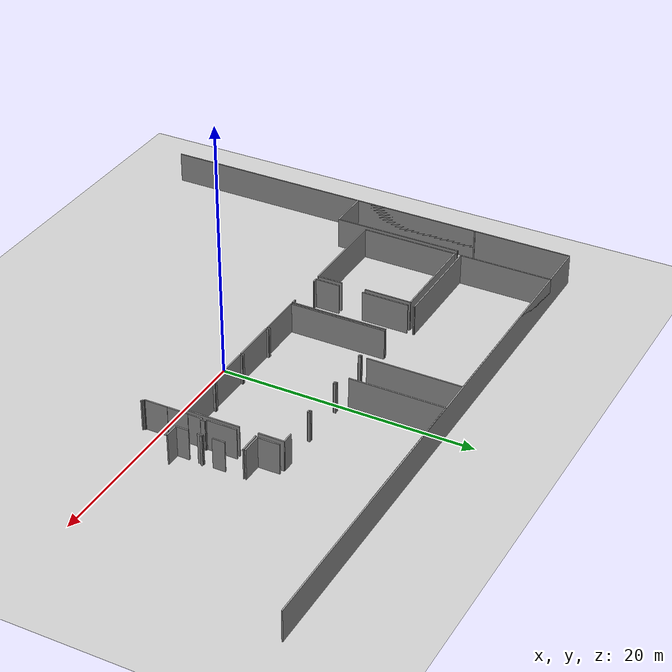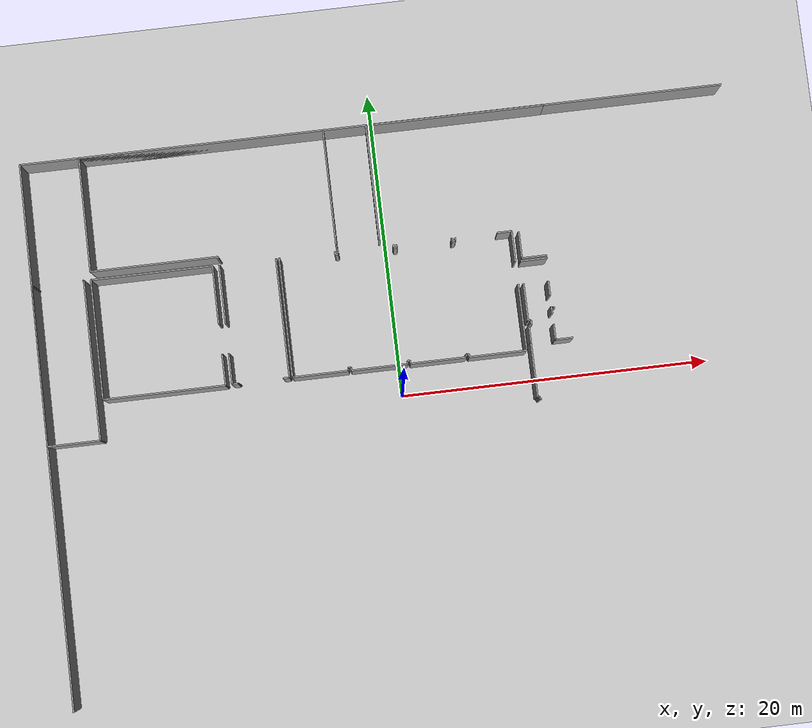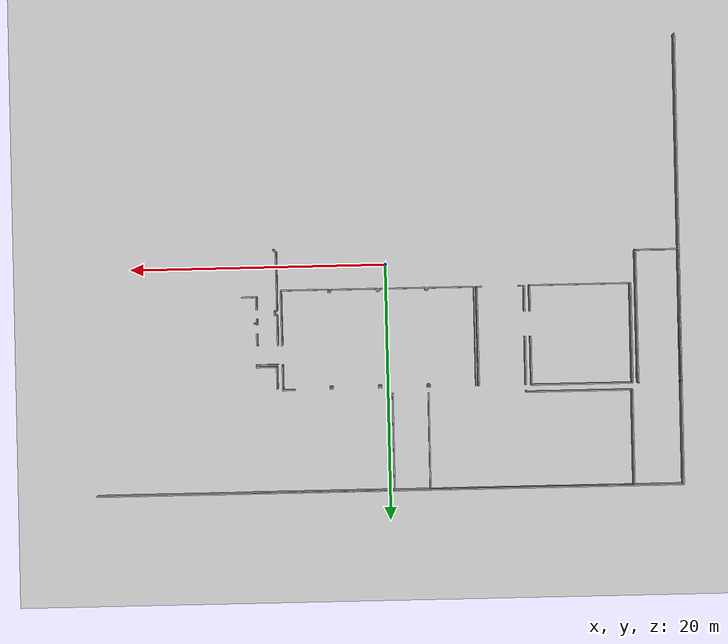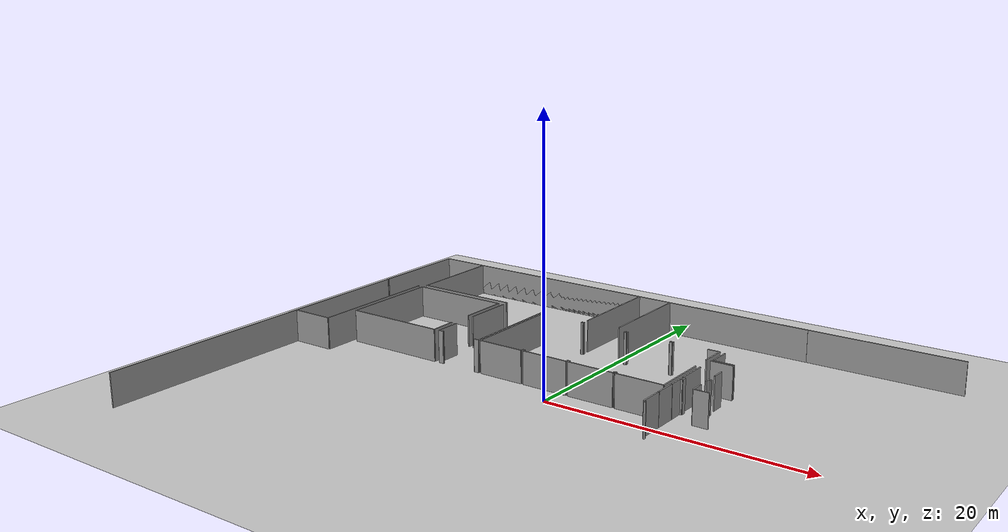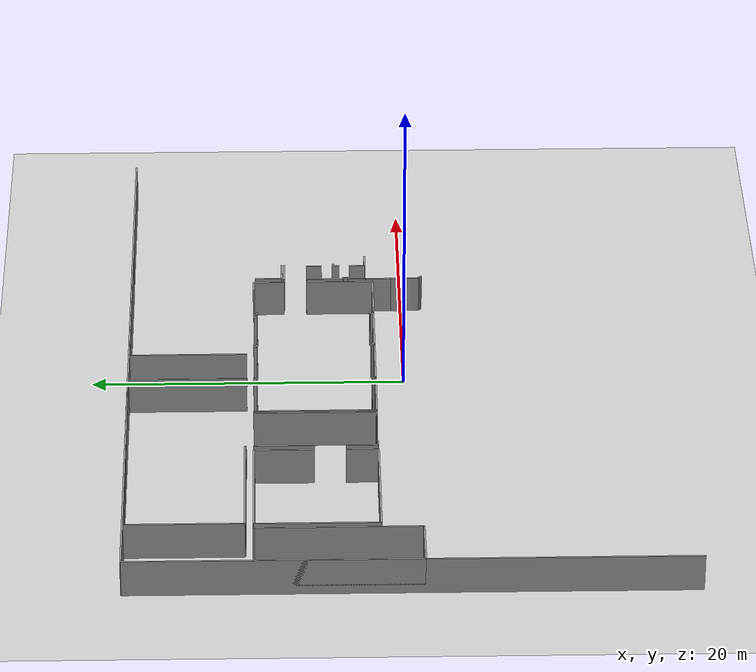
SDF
<sdf version="1.6">
 <world name="default">
  <model name="ground_plane">
   <static>1</static>
   <link name="link">
    <collision name="collision">
     <geometry><plane><normal>0 0 1</normal><size>100 100</size></plane></geometry>
     <surface><friction><ode><mu>100</mu><mu2>50</mu2></ode></friction></surface>
    </collision>
    <visual name="visual">
     <cast_shadows>0</cast_shadows>
     <geometry><plane><normal>0 0 1</normal><size>100 100</size></plane></geometry>
     <material>
      <script><uri>file://media/materials/scripts/gazebo.material</uri><name>Gazebo/Grey</name></script>
     </material>
    </visual>
   </link>
  </model>
  <model name="50009418">
   <static>1</static>
   <link name="Wall_0">
    <collision name="Wall_0_Collision">
     <geometry><box><size>3.38024506571 0.1 2.5</size></box></geometry>
     <pose>1.69012253285 0 1.25 0 0 0</pose>
    </collision>
    <visual name="Wall_0_Visual">
     <pose>1.69012253285 0 1.25 0 0 0</pose>
     <geometry><box><size>3.38024506571 0.1 2.5</size></box></geometry>
     <material>
      <script><uri>file://media/materials/scripts/gazebo.material</uri><name>Gazebo/Grey</name></script>
      <ambient>1 1 1 1</ambient>
     </material>
    </visual>
    <pose>3.38024506571 -18.3310289715 0 0 0 3.14159265359</pose>
   </link>
   <link name="Wall_1">
    <collision name="Wall_1_Collision">
     <geometry><box><size>10.351616013 0.1 2.5</size></box></geometry>
     <pose>5.17580800649 0 1.25 0 0 0</pose>
    </collision>
    <visual name="Wall_1_Visual">
     <pose>5.17580800649 0 1.25 0 0 0</pose>
     <geometry><box><size>10.351616013 0.1 2.5</size></box></geometry>
     <material>
      <script><uri>file://media/materials/scripts/gazebo.material</uri><name>Gazebo/Grey</name></script>
      <ambient>1 1 1 1</ambient>
     </material>
    </visual>
    <pose>0.0 -18.3310289715 0 0 0 1.57079632679</pose>
   </link>
   <link name="Wall_2">
    <collision name="Wall_2_Collision">
     <geometry><box><size>0.0989395707545 0.1 2.5</size></box></geometry>
     <pose>0.0494697853772 0 1.25 0 0 0</pose>
    </collision>
    <visual name="Wall_2_Visual">
     <pose>0.0494697853772 0 1.25 0 0 0</pose>
     <geometry><box><size>0.0989395707545 0.1 2.5</size></box></geometry>
     <material>
      <script><uri>file://media/materials/scripts/gazebo.material</uri><name>Gazebo/Grey</name></script>
      <ambient>1 1 1 1</ambient>
     </material>
    </visual>
    <pose>0.0 -7.97941295855 0 0 0 0.0</pose>
   </link>
   <link name="Wall_3">
    <collision name="Wall_3_Collision">
     <geometry><box><size>0.078771119793 0.1 2.5</size></box></geometry>
     <pose>0.0393855598965 0 1.25 0 0 0</pose>
    </collision>
    <visual name="Wall_3_Visual">
     <pose>0.0393855598965 0 1.25 0 0 0</pose>
     <geometry><box><size>0.078771119793 0.1 2.5</size></box></geometry>
     <material>
      <script><uri>file://media/materials/scripts/gazebo.material</uri><name>Gazebo/Grey</name></script>
      <ambient>1 1 1 1</ambient>
     </material>
    </visual>
    <pose>3.2831447562 -7.97941295855 0 0 0 0.0</pose>
   </link>
   <link name="Wall_4">
    <collision name="Wall_4_Collision">
     <geometry><box><size>10.3516322404 0.1 2.5</size></box></geometry>
     <pose>5.17581612018 0 1.25 0 0 0</pose>
    </collision>
    <visual name="Wall_4_Visual">
     <pose>5.17581612018 0 1.25 0 0 0</pose>
     <geometry><box><size>10.3516322404 0.1 2.5</size></box></geometry>
     <material>
      <script><uri>file://media/materials/scripts/gazebo.material</uri><name>Gazebo/Grey</name></script>
      <ambient>1 1 1 1</ambient>
     </material>
    </visual>
    <pose>3.361915876 -7.97941295855 0 0 0 -1.56902566891</pose>
   </link>
   <link name="Wall_5">
    <collision name="Wall_5_Collision">
     <geometry><box><size>7.87876097214 0.1 2.5</size></box></geometry>
     <pose>3.93938048607 0 1.25 0 0 0</pose>
    </collision>
    <visual name="Wall_5_Visual">
     <pose>3.93938048607 0 1.25 0 0 0</pose>
     <geometry><box><size>7.87876097214 0.1 2.5</size></box></geometry>
     <material>
      <script><uri>file://media/materials/scripts/gazebo.material</uri><name>Gazebo/Grey</name></script>
      <ambient>1 1 1 1</ambient>
     </material>
    </visual>
    <pose>11.6878076006 -15.7501014765 0 0 0 3.14159265359</pose>
   </link>
   <link name="Wall_6">
    <collision name="Wall_6_Collision">
     <geometry><box><size>7.76295093612 0.1 2.5</size></box></geometry>
     <pose>3.88147546806 0 1.25 0 0 0</pose>
    </collision>
    <visual name="Wall_6_Visual">
     <pose>3.88147546806 0 1.25 0 0 0</pose>
     <geometry><box><size>7.76295093612 0.1 2.5</size></box></geometry>
     <material>
      <script><uri>file://media/materials/scripts/gazebo.material</uri><name>Gazebo/Grey</name></script>
      <ambient>1 1 1 1</ambient>
     </material>
    </visual>
    <pose>3.80904662844 -15.7501014765 0 0 0 1.57079632679</pose>
   </link>
   <link name="Wall_7">
    <collision name="Wall_7_Collision">
     <geometry><box><size>7.86055862804 0.1 2.5</size></box></geometry>
     <pose>3.93027931402 0 1.25 0 0 0</pose>
    </collision>
    <visual name="Wall_7_Visual">
     <pose>3.93027931402 0 1.25 0 0 0</pose>
     <geometry><box><size>7.86055862804 0.1 2.5</size></box></geometry>
     <material>
      <script><uri>file://media/materials/scripts/gazebo.material</uri><name>Gazebo/Grey</name></script>
      <ambient>1 1 1 1</ambient>
     </material>
    </visual>
    <pose>3.80904662844 -7.98715054036 0 0 0 0.0</pose>
   </link>
   <link name="Wall_8">
    <collision name="Wall_8_Collision">
     <geometry><box><size>3.78475569537 0.1 2.5</size></box></geometry>
     <pose>1.89237784768 0 1.25 0 0 0</pose>
    </collision>
    <visual name="Wall_8_Visual">
     <pose>1.89237784768 0 1.25 0 0 0</pose>
     <geometry><box><size>3.78475569537 0.1 2.5</size></box></geometry>
     <material>
      <script><uri>file://media/materials/scripts/gazebo.material</uri><name>Gazebo/Grey</name></script>
      <ambient>1 1 1 1</ambient>
     </material>
    </visual>
    <pose>11.6696052565 -7.98715054036 0 0 0 -1.57079632679</pose>
   </link>
   <link name="Wall_9">
    <collision name="Wall_9_Collision">
     <geometry><box><size>2.01857615973 0.1 2.5</size></box></geometry>
     <pose>1.00928807987 0 1.25 0 0 0</pose>
    </collision>
    <visual name="Wall_9_Visual">
     <pose>1.00928807987 0 1.25 0 0 0</pose>
     <geometry><box><size>2.01857615973 0.1 2.5</size></box></geometry>
     <material>
      <script><uri>file://media/materials/scripts/gazebo.material</uri><name>Gazebo/Grey</name></script>
      <ambient>1 1 1 1</ambient>
     </material>
    </visual>
    <pose>11.6696052565 -13.7316073875 0 0 0 -1.56177878702</pose>
   </link>
   <link name="Wall_10">
    <collision name="Wall_10_Collision">
     <geometry><box><size>0.377111979299 0.1 2.5</size></box></geometry>
     <pose>0.188555989649 0 1.25 0 0 0</pose>
    </collision>
    <visual name="Wall_10_Visual">
     <pose>0.188555989649 0 1.25 0 0 0</pose>
     <geometry><box><size>0.377111979299 0.1 2.5</size></box></geometry>
     <material>
      <script><uri>file://media/materials/scripts/gazebo.material</uri><name>Gazebo/Grey</name></script>
      <ambient>1 1 1 1</ambient>
     </material>
    </visual>
    <pose>15.7893601908 -15.7225125577 0 0 0 3.14159265359</pose>
   </link>
   <link name="Wall_11">
    <collision name="Wall_11_Collision">
     <geometry><box><size>0.0501674361967 0.1 2.5</size></box></geometry>
     <pose>0.0250837180983 0 1.25 0 0 0</pose>
    </collision>
    <visual name="Wall_11_Visual">
     <pose>0.0250837180983 0 1.25 0 0 0</pose>
     <geometry><box><size>0.0501674361967 0.1 2.5</size></box></geometry>
     <material>
      <script><uri>file://media/materials/scripts/gazebo.material</uri><name>Gazebo/Grey</name></script>
      <ambient>1 1 1 1</ambient>
     </material>
    </visual>
    <pose>15.4122482115 -15.7225125577 0 0 0 1.57079632679</pose>
   </link>
   <link name="Wall_12">
    <collision name="Wall_12_Collision">
     <geometry><box><size>0.0525775026638 0.1 2.5</size></box></geometry>
     <pose>0.0262887513319 0 1.25 0 0 0</pose>
    </collision>
    <visual name="Wall_12_Visual">
     <pose>0.0262887513319 0 1.25 0 0 0</pose>
     <geometry><box><size>0.0525775026638 0.1 2.5</size></box></geometry>
     <material>
      <script><uri>file://media/materials/scripts/gazebo.material</uri><name>Gazebo/Grey</name></script>
      <ambient>1 1 1 1</ambient>
     </material>
    </visual>
    <pose>12.4979704703 -15.6723451215 0 0 0 -1.57079632679</pose>
   </link>
   <link name="Wall_13">
    <collision name="Wall_13_Collision">
     <geometry><box><size>0.391952914912 0.1 2.5</size></box></geometry>
     <pose>0.195976457456 0 1.25 0 0 0</pose>
    </collision>
    <visual name="Wall_13_Visual">
     <pose>0.195976457456 0 1.25 0 0 0</pose>
     <geometry><box><size>0.391952914912 0.1 2.5</size></box></geometry>
     <material>
      <script><uri>file://media/materials/scripts/gazebo.material</uri><name>Gazebo/Grey</name></script>
      <ambient>1 1 1 1</ambient>
     </material>
    </visual>
    <pose>12.4979704703 -15.7249226242 0 0 0 3.14159265359</pose>
   </link>
   <link name="Wall_14">
    <collision name="Wall_14_Collision">
     <geometry><box><size>1.99306154549 0.1 2.5</size></box></geometry>
     <pose>0.996530772743 0 1.25 0 0 0</pose>
    </collision>
    <visual name="Wall_14_Visual">
     <pose>0.996530772743 0 1.25 0 0 0</pose>
     <geometry><box><size>1.99306154549 0.1 2.5</size></box></geometry>
     <material>
      <script><uri>file://media/materials/scripts/gazebo.material</uri><name>Gazebo/Grey</name></script>
      <ambient>1 1 1 1</ambient>
     </material>
    </visual>
    <pose>12.1060175554 -15.7249226242 0 0 0 1.57079632679</pose>
   </link>
   <link name="Wall_15">
    <collision name="Wall_15_Collision">
     <geometry><box><size>3.80143589223 0.1 2.5</size></box></geometry>
     <pose>1.90071794612 0 1.25 0 0 0</pose>
    </collision>
    <visual name="Wall_15_Visual">
     <pose>1.90071794612 0 1.25 0 0 0</pose>
     <geometry><box><size>3.80143589223 0.1 2.5</size></box></geometry>
     <material>
      <script><uri>file://media/materials/scripts/gazebo.material</uri><name>Gazebo/Grey</name></script>
      <ambient>1 1 1 1</ambient>
     </material>
    </visual>
    <pose>12.1060175554 -11.773745497 0 0 0 1.57079632679</pose>
   </link>
   <link name="Wall_16">
    <collision name="Wall_16_Collision">
     <geometry><box><size>7.75022300862 0.1 2.5</size></box></geometry>
     <pose>3.87511150431 0 1.25 0 0 0</pose>
    </collision>
    <visual name="Wall_16_Visual">
     <pose>3.87511150431 0 1.25 0 0 0</pose>
     <geometry><box><size>7.75022300862 0.1 2.5</size></box></geometry>
     <material>
      <script><uri>file://media/materials/scripts/gazebo.material</uri><name>Gazebo/Grey</name></script>
      <ambient>1 1 1 1</ambient>
     </material>
    </visual>
    <pose>15.7717286519 -7.97230960475 0 0 0 -1.56852135302</pose>
   </link>
   <link name="Wall_17">
    <collision name="Wall_17_Collision">
     <geometry><box><size>3.70439900553 0.1 2.5</size></box></geometry>
     <pose>1.85219950277 0 1.25 0 0 0</pose>
    </collision>
    <visual name="Wall_17_Visual">
     <pose>1.85219950277 0 1.25 0 0 0</pose>
     <geometry><box><size>3.70439900553 0.1 2.5</size></box></geometry>
     <material>
      <script><uri>file://media/materials/scripts/gazebo.material</uri><name>Gazebo/Grey</name></script>
      <ambient>1 1 1 1</ambient>
     </material>
    </visual>
    <pose>31.0646151504 -15.7539702674 0 0 0 3.14159265359</pose>
   </link>
   <link name="Wall_18">
    <collision name="Wall_18_Collision">
     <geometry><box><size>0.206504642549 0.1 2.5</size></box></geometry>
     <pose>0.103252321275 0 1.25 0 0 0</pose>
    </collision>
    <visual name="Wall_18_Visual">
     <pose>0.103252321275 0 1.25 0 0 0</pose>
     <geometry><box><size>0.206504642549 0.1 2.5</size></box></geometry>
     <material>
      <script><uri>file://media/materials/scripts/gazebo.material</uri><name>Gazebo/Grey</name></script>
      <ambient>1 1 1 1</ambient>
     </material>
    </visual>
    <pose>27.3602161449 -15.7539702674 0 0 0 1.57079632679</pose>
   </link>
   <link name="Wall_19">
    <collision name="Wall_19_Collision">
     <geometry><box><size>0.184940889949 0.1 2.5</size></box></geometry>
     <pose>0.0924704449744 0 1.25 0 0 0</pose>
    </collision>
    <visual name="Wall_19_Visual">
     <pose>0.0924704449744 0 1.25 0 0 0</pose>
     <geometry><box><size>0.184940889949 0.1 2.5</size></box></geometry>
     <material>
      <script><uri>file://media/materials/scripts/gazebo.material</uri><name>Gazebo/Grey</name></script>
      <ambient>1 1 1 1</ambient>
     </material>
    </visual>
    <pose>27.3602161449 -15.5474656248 0 0 0 3.14159265359</pose>
   </link>
   <link name="Wall_20">
    <collision name="Wall_20_Collision">
     <geometry><box><size>0.19217108935 0.1 2.5</size></box></geometry>
     <pose>0.096085544675 0 1.25 0 0 0</pose>
    </collision>
    <visual name="Wall_20_Visual">
     <pose>0.096085544675 0 1.25 0 0 0</pose>
     <geometry><box><size>0.19217108935 0.1 2.5</size></box></geometry>
     <material>
      <script><uri>file://media/materials/scripts/gazebo.material</uri><name>Gazebo/Grey</name></script>
      <ambient>1 1 1 1</ambient>
     </material>
    </visual>
    <pose>27.175275255 -15.5474656248 0 0 0 -1.57079632679</pose>
   </link>
   <link name="Wall_21">
    <collision name="Wall_21_Collision">
     <geometry><box><size>3.6026054087 0.1 2.5</size></box></geometry>
     <pose>1.80130270435 0 1.25 0 0 0</pose>
    </collision>
    <visual name="Wall_21_Visual">
     <pose>1.80130270435 0 1.25 0 0 0</pose>
     <geometry><box><size>3.6026054087 0.1 2.5</size></box></geometry>
     <material>
      <script><uri>file://media/materials/scripts/gazebo.material</uri><name>Gazebo/Grey</name></script>
      <ambient>1 1 1 1</ambient>
     </material>
    </visual>
    <pose>27.175275255 -15.7396367142 0 0 0 3.14159265359</pose>
   </link>
   <link name="Wall_22">
    <collision name="Wall_22_Collision">
     <geometry><box><size>0.200669744787 0.1 2.5</size></box></geometry>
     <pose>0.100334872393 0 1.25 0 0 0</pose>
    </collision>
    <visual name="Wall_22_Visual">
     <pose>0.100334872393 0 1.25 0 0 0</pose>
     <geometry><box><size>0.200669744787 0.1 2.5</size></box></geometry>
     <material>
      <script><uri>file://media/materials/scripts/gazebo.material</uri><name>Gazebo/Grey</name></script>
      <ambient>1 1 1 1</ambient>
     </material>
    </visual>
    <pose>23.5726698463 -15.7396367142 0 0 0 1.57079632679</pose>
   </link>
   <link name="Wall_23">
    <collision name="Wall_23_Collision">
     <geometry><box><size>0.186399614389 0.1 2.5</size></box></geometry>
     <pose>0.0931998071947 0 1.25 0 0 0</pose>
    </collision>
    <visual name="Wall_23_Visual">
     <pose>0.0931998071947 0 1.25 0 0 0</pose>
     <geometry><box><size>0.186399614389 0.1 2.5</size></box></geometry>
     <material>
      <script><uri>file://media/materials/scripts/gazebo.material</uri><name>Gazebo/Grey</name></script>
      <ambient>1 1 1 1</ambient>
     </material>
    </visual>
    <pose>23.5726698463 -15.5389669694 0 0 0 3.14159265359</pose>
   </link>
   <link name="Wall_24">
    <collision name="Wall_24_Collision">
     <geometry><box><size>0.194644578619 0.1 2.5</size></box></geometry>
     <pose>0.0973222893095 0 1.25 0 0 0</pose>
    </collision>
    <visual name="Wall_24_Visual">
     <pose>0.0973222893095 0 1.25 0 0 0</pose>
     <geometry><box><size>0.194644578619 0.1 2.5</size></box></geometry>
     <material>
      <script><uri>file://media/materials/scripts/gazebo.material</uri><name>Gazebo/Grey</name></script>
      <ambient>1 1 1 1</ambient>
     </material>
    </visual>
    <pose>23.3862702319 -15.5389669694 0 0 0 -1.57079632679</pose>
   </link>
   <link name="Wall_25">
    <collision name="Wall_25_Collision">
     <geometry><box><size>3.61414835862 0.1 2.5</size></box></geometry>
     <pose>1.80707417931 0 1.25 0 0 0</pose>
    </collision>
    <visual name="Wall_25_Visual">
     <pose>1.80707417931 0 1.25 0 0 0</pose>
     <geometry><box><size>3.61414835862 0.1 2.5</size></box></geometry>
     <material>
      <script><uri>file://media/materials/scripts/gazebo.material</uri><name>Gazebo/Grey</name></script>
      <ambient>1 1 1 1</ambient>
     </material>
    </visual>
    <pose>23.3862702319 -15.733611548 0 0 0 3.14159265359</pose>
   </link>
   <link name="Wall_26">
    <collision name="Wall_26_Collision">
     <geometry><box><size>0.20187477802 0.1 2.5</size></box></geometry>
     <pose>0.10093738901 0 1.25 0 0 0</pose>
    </collision>
    <visual name="Wall_26_Visual">
     <pose>0.10093738901 0 1.25 0 0 0</pose>
     <geometry><box><size>0.20187477802 0.1 2.5</size></box></geometry>
     <material>
      <script><uri>file://media/materials/scripts/gazebo.material</uri><name>Gazebo/Grey</name></script>
      <ambient>1 1 1 1</ambient>
     </material>
    </visual>
    <pose>19.7721218733 -15.733611548 0 0 0 1.57079632679</pose>
   </link>
   <link name="Wall_27">
    <collision name="Wall_27_Collision">
     <geometry><box><size>0.186589882795 0.1 2.5</size></box></geometry>
     <pose>0.0932949413973 0 1.25 0 0 0</pose>
    </collision>
    <visual name="Wall_27_Visual">
     <pose>0.0932949413973 0 1.25 0 0 0</pose>
     <geometry><box><size>0.186589882795 0.1 2.5</size></box></geometry>
     <material>
      <script><uri>file://media/materials/scripts/gazebo.material</uri><name>Gazebo/Grey</name></script>
      <ambient>1 1 1 1</ambient>
     </material>
    </visual>
    <pose>19.7721218733 -15.53173677 0 0 0 3.14159265359</pose>
   </link>
   <link name="Wall_28">
    <collision name="Wall_28_Collision">
     <geometry><box><size>0.196927799482 0.1 2.5</size></box></geometry>
     <pose>0.0984638997412 0 1.25 0 0 0</pose>
    </collision>
    <visual name="Wall_28_Visual">
     <pose>0.0984638997412 0 1.25 0 0 0</pose>
     <geometry><box><size>0.196927799482 0.1 2.5</size></box></geometry>
     <material>
      <script><uri>file://media/materials/scripts/gazebo.material</uri><name>Gazebo/Grey</name></script>
      <ambient>1 1 1 1</ambient>
     </material>
    </visual>
    <pose>19.5855319905 -15.53173677 0 0 0 -1.57079632679</pose>
   </link>
   <link name="Wall_29">
    <collision name="Wall_29_Collision">
     <geometry><box><size>3.60254198589 0.1 2.5</size></box></geometry>
     <pose>1.80127099295 0 1.25 0 0 0</pose>
    </collision>
    <visual name="Wall_29_Visual">
     <pose>1.80127099295 0 1.25 0 0 0</pose>
     <geometry><box><size>3.60254198589 0.1 2.5</size></box></geometry>
     <material>
      <script><uri>file://media/materials/scripts/gazebo.material</uri><name>Gazebo/Grey</name></script>
      <ambient>1 1 1 1</ambient>
     </material>
    </visual>
    <pose>19.5855319905 -15.7286645695 0 0 0 3.14159265359</pose>
   </link>
   <link name="Wall_30">
    <collision name="Wall_30_Collision">
     <geometry><box><size>7.75819422599 0.1 2.5</size></box></geometry>
     <pose>3.87909711299 0 1.25 0 0 0</pose>
    </collision>
    <visual name="Wall_30_Visual">
     <pose>3.87909711299 0 1.25 0 0 0</pose>
     <geometry><box><size>7.75819422599 0.1 2.5</size></box></geometry>
     <material>
      <script><uri>file://media/materials/scripts/gazebo.material</uri><name>Gazebo/Grey</name></script>
      <ambient>1 1 1 1</ambient>
     </material>
    </visual>
    <pose>15.9829900046 -15.7286645695 0 0 0 1.57079632679</pose>
   </link>
   <link name="Wall_31">
    <collision name="Wall_31_Collision">
     <geometry><box><size>0.204348267289 0.1 2.5</size></box></geometry>
     <pose>0.102174133645 0 1.25 0 0 0</pose>
    </collision>
    <visual name="Wall_31_Visual">
     <pose>0.102174133645 0 1.25 0 0 0</pose>
     <geometry><box><size>0.204348267289 0.1 2.5</size></box></geometry>
     <material>
      <script><uri>file://media/materials/scripts/gazebo.material</uri><name>Gazebo/Grey</name></script>
      <ambient>1 1 1 1</ambient>
     </material>
    </visual>
    <pose>19.5913668882 -7.9704703435 0 0 0 -1.57079632679</pose>
   </link>
   <link name="Wall_32">
    <collision name="Wall_32_Collision">
     <geometry><box><size>0.183482165508 0.1 2.5</size></box></geometry>
     <pose>0.0917410827541 0 1.25 0 0 0</pose>
    </collision>
    <visual name="Wall_32_Visual">
     <pose>0.0917410827541 0 1.25 0 0 0</pose>
     <geometry><box><size>0.183482165508 0.1 2.5</size></box></geometry>
     <material>
      <script><uri>file://media/materials/scripts/gazebo.material</uri><name>Gazebo/Grey</name></script>
      <ambient>1 1 1 1</ambient>
     </material>
    </visual>
    <pose>19.5913668882 -8.17481861079 0 0 0 0.0</pose>
   </link>
   <link name="Wall_33">
    <collision name="Wall_33_Collision">
     <geometry><box><size>0.200162362373 0.1 2.5</size></box></geometry>
     <pose>0.100081181186 0 1.25 0 0 0</pose>
    </collision>
    <visual name="Wall_33_Visual">
     <pose>0.100081181186 0 1.25 0 0 0</pose>
     <geometry><box><size>0.200162362373 0.1 2.5</size></box></geometry>
     <material>
      <script><uri>file://media/materials/scripts/gazebo.material</uri><name>Gazebo/Grey</name></script>
      <ambient>1 1 1 1</ambient>
     </material>
    </visual>
    <pose>19.7748490537 -8.17481861079 0 0 0 1.57079632679</pose>
   </link>
   <link name="Wall_34">
    <collision name="Wall_34_Collision">
     <geometry><box><size>0.209295245827 0.1 2.5</size></box></geometry>
     <pose>0.104647622913 0 1.25 0 0 0</pose>
    </collision>
    <visual name="Wall_34_Visual">
     <pose>0.104647622913 0 1.25 0 0 0</pose>
     <geometry><box><size>0.209295245827 0.1 2.5</size></box></geometry>
     <material>
      <script><uri>file://media/materials/scripts/gazebo.material</uri><name>Gazebo/Grey</name></script>
      <ambient>1 1 1 1</ambient>
     </material>
    </visual>
    <pose>23.3733954031 -7.97465624841 0 0 0 -1.57079632679</pose>
   </link>
   <link name="Wall_35">
    <collision name="Wall_35_Collision">
     <geometry><box><size>0.194898269826 0.1 2.5</size></box></geometry>
     <pose>0.097449134913 0 1.25 0 0 0</pose>
    </collision>
    <visual name="Wall_35_Visual">
     <pose>0.097449134913 0 1.25 0 0 0</pose>
     <geometry><box><size>0.194898269826 0.1 2.5</size></box></geometry>
     <material>
      <script><uri>file://media/materials/scripts/gazebo.material</uri><name>Gazebo/Grey</name></script>
      <ambient>1 1 1 1</ambient>
     </material>
    </visual>
    <pose>23.3733954031 -8.18395149424 0 0 0 0.0</pose>
   </link>
   <link name="Wall_36">
    <collision name="Wall_36_Collision">
     <geometry><box><size>0.205299609316 0.1 2.5</size></box></geometry>
     <pose>0.102649804658 0 1.25 0 0 0</pose>
    </collision>
    <visual name="Wall_36_Visual">
     <pose>0.102649804658 0 1.25 0 0 0</pose>
     <geometry><box><size>0.205299609316 0.1 2.5</size></box></geometry>
     <material>
      <script><uri>file://media/materials/scripts/gazebo.material</uri><name>Gazebo/Grey</name></script>
      <ambient>1 1 1 1</ambient>
     </material>
    </visual>
    <pose>23.5682936729 -8.18395149424 0 0 0 1.57079632679</pose>
   </link>
   <link name="Wall_37">
    <collision name="Wall_37_Collision">
     <geometry><box><size>0.199084174743 0.1 2.5</size></box></geometry>
     <pose>0.0995420873713 0 1.25 0 0 0</pose>
    </collision>
    <visual name="Wall_37_Visual">
     <pose>0.0995420873713 0 1.25 0 0 0</pose>
     <geometry><box><size>0.199084174743 0.1 2.5</size></box></geometry>
     <material>
      <script><uri>file://media/materials/scripts/gazebo.material</uri><name>Gazebo/Grey</name></script>
      <ambient>1 1 1 1</ambient>
     </material>
    </visual>
    <pose>27.163415191 -7.97865188493 0 0 0 -1.57079632679</pose>
   </link>
   <link name="Wall_38">
    <collision name="Wall_38_Collision">
     <geometry><box><size>0.203206656857 0.1 2.5</size></box></geometry>
     <pose>0.101603328429 0 1.25 0 0 0</pose>
    </collision>
    <visual name="Wall_38_Visual">
     <pose>0.101603328429 0 1.25 0 0 0</pose>
     <geometry><box><size>0.203206656857 0.1 2.5</size></box></geometry>
     <material>
      <script><uri>file://media/materials/scripts/gazebo.material</uri><name>Gazebo/Grey</name></script>
      <ambient>1 1 1 1</ambient>
     </material>
    </visual>
    <pose>27.163415191 -8.17773605967 0 0 0 0.0</pose>
   </link>
   <link name="Wall_39">
    <collision name="Wall_39_Collision">
     <geometry><box><size>0.196991222284 0.1 2.5</size></box></geometry>
     <pose>0.0984956111421 0 1.25 0 0 0</pose>
    </collision>
    <visual name="Wall_39_Visual">
     <pose>0.0984956111421 0 1.25 0 0 0</pose>
     <geometry><box><size>0.196991222284 0.1 2.5</size></box></geometry>
     <material>
      <script><uri>file://media/materials/scripts/gazebo.material</uri><name>Gazebo/Grey</name></script>
      <ambient>1 1 1 1</ambient>
     </material>
    </visual>
    <pose>27.3666218479 -8.17773605967 0 0 0 1.57079632679</pose>
   </link>
   <link name="Wall_40">
    <collision name="Wall_40_Collision">
     <geometry><box><size>0.935042366432 0.1 2.5</size></box></geometry>
     <pose>0.467521183216 0 1.25 0 0 0</pose>
    </collision>
    <visual name="Wall_40_Visual">
     <pose>0.467521183216 0 1.25 0 0 0</pose>
     <geometry><box><size>0.935042366432 0.1 2.5</size></box></geometry>
     <material>
      <script><uri>file://media/materials/scripts/gazebo.material</uri><name>Gazebo/Grey</name></script>
      <ambient>1 1 1 1</ambient>
     </material>
    </visual>
    <pose>30.107501649 -7.98074483738 0 0 0 0.0</pose>
   </link>
   <link name="Wall_41">
    <collision name="Wall_41_Collision">
     <geometry><box><size>1.99978436247 0.1 2.5</size></box></geometry>
     <pose>0.999892181237 0 1.25 0 0 0</pose>
    </collision>
    <visual name="Wall_41_Visual">
     <pose>0.999892181237 0 1.25 0 0 0</pose>
     <geometry><box><size>1.99978436247 0.1 2.5</size></box></geometry>
     <material>
      <script><uri>file://media/materials/scripts/gazebo.material</uri><name>Gazebo/Grey</name></script>
      <ambient>1 1 1 1</ambient>
     </material>
    </visual>
    <pose>31.0425440154 -7.98074483738 0 0 0 -1.57079632679</pose>
   </link>
   <link name="Wall_42">
    <collision name="Wall_42_Collision">
     <geometry><box><size>4.32219344785 0.1 2.5</size></box></geometry>
     <pose>2.16109672392 0 1.25 0 0 0</pose>
    </collision>
    <visual name="Wall_42_Visual">
     <pose>2.16109672392 0 1.25 0 0 0</pose>
     <geometry><box><size>4.32219344785 0.1 2.5</size></box></geometry>
     <material>
      <script><uri>file://media/materials/scripts/gazebo.material</uri><name>Gazebo/Grey</name></script>
      <ambient>1 1 1 1</ambient>
     </material>
    </visual>
    <pose>31.0425440154 -11.4318331727 0 0 0 -1.56568983834</pose>
   </link>
   <link name="Wall_59">
    <collision name="Wall_59_Collision">
     <geometry><box><size>1.63764016439 0.1 2.5</size></box></geometry>
     <pose>0.818820082196 0 1.25 0 0 0</pose>
    </collision>
    <visual name="Wall_59_Visual">
     <pose>0.818820082196 0 1.25 0 0 0</pose>
     <geometry><box><size>1.63764016439 0.1 2.5</size></box></geometry>
     <material>
      <script><uri>file://media/materials/scripts/gazebo.material</uri><name>Gazebo/Grey</name></script>
      <ambient>1 1 1 1</ambient>
     </material>
    </visual>
    <pose>31.3865492922 -16.9462555178 0 0 0 1.57079632679</pose>
   </link>
   <link name="Wall_60">
    <collision name="Wall_60_Collision">
     <geometry><box><size>0.0258765031204 0.1 2.5</size></box></geometry>
     <pose>0.0129382515602 0 1.25 0 0 0</pose>
    </collision>
    <visual name="Wall_60_Visual">
     <pose>0.0129382515602 0 1.25 0 0 0</pose>
     <geometry><box><size>0.0258765031204 0.1 2.5</size></box></geometry>
     <material>
      <script><uri>file://media/materials/scripts/gazebo.material</uri><name>Gazebo/Grey</name></script>
      <ambient>1 1 1 1</ambient>
     </material>
    </visual>
    <pose>32.9771931605 -15.3086153534 0 0 0 1.57079632679</pose>
   </link>
   <link name="Wall_61">
    <collision name="Wall_61_Collision">
     <geometry><box><size>1.1457963367 0.1 2.5</size></box></geometry>
     <pose>0.572898168349 0 1.25 0 0 0</pose>
    </collision>
    <visual name="Wall_61_Visual">
     <pose>0.572898168349 0 1.25 0 0 0</pose>
     <geometry><box><size>1.1457963367 0.1 2.5</size></box></geometry>
     <material>
      <script><uri>file://media/materials/scripts/gazebo.material</uri><name>Gazebo/Grey</name></script>
      <ambient>1 1 1 1</ambient>
     </material>
    </visual>
    <pose>32.9771931605 -15.2827388503 0 0 0 0.0</pose>
   </link>
   <link name="Wall_70">
    <collision name="Wall_70_Collision">
     <geometry><box><size>1.72643208686 0.1 2.5</size></box></geometry>
     <pose>0.863216043432 0 1.25 0 0 0</pose>
    </collision>
    <visual name="Wall_70_Visual">
     <pose>0.863216043432 0 1.25 0 0 0</pose>
     <geometry><box><size>1.72643208686 0.1 2.5</size></box></geometry>
     <material>
      <script><uri>file://media/materials/scripts/gazebo.material</uri><name>Gazebo/Grey</name></script>
      <ambient>1 1 1 1</ambient>
     </material>
    </visual>
    <pose>31.3889593587 -9.96822517632 0 0 0 0.0</pose>
   </link>
   <link name="Wall_83">
    <collision name="Wall_83_Collision">
     <geometry><box><size>1.72484651682 0.1 2.5</size></box></geometry>
     <pose>0.86242325841 0 1.25 0 0 0</pose>
    </collision>
    <visual name="Wall_83_Visual">
     <pose>0.86242325841 0 1.25 0 0 0</pose>
     <geometry><box><size>1.72484651682 0.1 2.5</size></box></geometry>
     <material>
      <script><uri>file://media/materials/scripts/gazebo.material</uri><name>Gazebo/Grey</name></script>
      <ambient>1 1 1 1</ambient>
     </material>
    </visual>
    <pose>31.4848546349 -8.07866964331 0 0 0 -1.57079632679</pose>
   </link>
   <link name="Wall_84">
    <collision name="Wall_84_Collision">
     <geometry><box><size>1.63015627378 0.1 2.5</size></box></geometry>
     <pose>0.815078136892 0 1.25 0 0 0</pose>
    </collision>
    <visual name="Wall_84_Visual">
     <pose>0.815078136892 0 1.25 0 0 0</pose>
     <geometry><box><size>1.63015627378 0.1 2.5</size></box></geometry>
     <material>
      <script><uri>file://media/materials/scripts/gazebo.material</uri><name>Gazebo/Grey</name></script>
      <ambient>1 1 1 1</ambient>
     </material>
    </visual>
    <pose>31.4848546349 -9.80351616013 0 0 0 0.0</pose>
   </link>
   <link name="Wall_86">
    <collision name="Wall_86_Collision">
     <geometry><box><size>1.09436044447 0.1 2.5</size></box></geometry>
     <pose>0.547180222233 0 1.25 0 0 0</pose>
    </collision>
    <visual name="Wall_86_Visual">
     <pose>0.547180222233 0 1.25 0 0 0</pose>
     <geometry><box><size>1.09436044447 0.1 2.5</size></box></geometry>
     <material>
      <script><uri>file://media/materials/scripts/gazebo.material</uri><name>Gazebo/Grey</name></script>
      <ambient>1 1 1 1</ambient>
     </material>
    </visual>
    <pose>31.3932721092 -15.2779187173 0 0 0 1.57079632679</pose>
   </link>
   <link name="Wall_87">
    <collision name="Wall_87_Collision">
     <geometry><box><size>0.177583844944 0.1 2.5</size></box></geometry>
     <pose>0.088791922472 0 1.25 0 0 0</pose>
    </collision>
    <visual name="Wall_87_Visual">
     <pose>0.088791922472 0 1.25 0 0 0</pose>
     <geometry><box><size>0.177583844944 0.1 2.5</size></box></geometry>
     <material>
      <script><uri>file://media/materials/scripts/gazebo.material</uri><name>Gazebo/Grey</name></script>
      <ambient>1 1 1 1</ambient>
     </material>
    </visual>
    <pose>31.3932721092 -14.1835582729 0 0 0 0.0</pose>
   </link>
   <link name="Wall_88">
    <collision name="Wall_88_Collision">
     <geometry><box><size>0.336140849358 0.1 2.5</size></box></geometry>
     <pose>0.168070424679 0 1.25 0 0 0</pose>
    </collision>
    <visual name="Wall_88_Visual">
     <pose>0.168070424679 0 1.25 0 0 0</pose>
     <geometry><box><size>0.336140849358 0.1 2.5</size></box></geometry>
     <material>
      <script><uri>file://media/materials/scripts/gazebo.material</uri><name>Gazebo/Grey</name></script>
      <ambient>1 1 1 1</ambient>
     </material>
    </visual>
    <pose>31.5708559541 -14.1835582729 0 0 0 1.57079632679</pose>
   </link>
   <link name="Wall_89">
    <collision name="Wall_89_Collision">
     <geometry><box><size>0.183926125121 0.1 2.5</size></box></geometry>
     <pose>0.0919630625603 0 1.25 0 0 0</pose>
    </collision>
    <visual name="Wall_89_Visual">
     <pose>0.0919630625603 0 1.25 0 0 0</pose>
     <geometry><box><size>0.183926125121 0.1 2.5</size></box></geometry>
     <material>
      <script><uri>file://media/materials/scripts/gazebo.material</uri><name>Gazebo/Grey</name></script>
      <ambient>1 1 1 1</ambient>
     </material>
    </visual>
    <pose>31.5708559541 -13.8474174235 0 0 0 3.14159265359</pose>
   </link>
   <link name="Wall_90">
    <collision name="Wall_90_Collision">
     <geometry><box><size>2.39903089959 0.1 2.5</size></box></geometry>
     <pose>1.19951544979 0 1.25 0 0 0</pose>
    </collision>
    <visual name="Wall_90_Visual">
     <pose>1.19951544979 0 1.25 0 0 0</pose>
     <geometry><box><size>2.39903089959 0.1 2.5</size></box></geometry>
     <material>
      <script><uri>file://media/materials/scripts/gazebo.material</uri><name>Gazebo/Grey</name></script>
      <ambient>1 1 1 1</ambient>
     </material>
    </visual>
    <pose>31.386929829 -13.8474174235 0 0 0 1.57079632679</pose>
   </link>
   <link name="Wall_91">
    <collision name="Wall_91_Collision">
     <geometry><box><size>0.991044700391 0.1 2.5</size></box></geometry>
     <pose>0.495522350195 0 1.25 0 0 0</pose>
    </collision>
    <visual name="Wall_91_Visual">
     <pose>0.495522350195 0 1.25 0 0 0</pose>
     <geometry><box><size>0.991044700391 0.1 2.5</size></box></geometry>
     <material>
      <script><uri>file://media/materials/scripts/gazebo.material</uri><name>Gazebo/Grey</name></script>
      <ambient>1 1 1 1</ambient>
     </material>
    </visual>
    <pose>32.9841062459 -11.4483865239 0 0 0 -1.57079632679</pose>
   </link>
   <link name="Wall_92">
    <collision name="Wall_92_Collision">
     <geometry><box><size>0.469962961084 0.1 2.5</size></box></geometry>
     <pose>0.234981480542 0 1.25 0 0 0</pose>
    </collision>
    <visual name="Wall_92_Visual">
     <pose>0.234981480542 0 1.25 0 0 0</pose>
     <geometry><box><size>0.469962961084 0.1 2.5</size></box></geometry>
     <material>
      <script><uri>file://media/materials/scripts/gazebo.material</uri><name>Gazebo/Grey</name></script>
      <ambient>1 1 1 1</ambient>
     </material>
    </visual>
    <pose>32.9841062459 -13.1237632554 0 0 0 -1.57079632679</pose>
   </link>
   <link name="Wall_93">
    <collision name="Wall_93_Collision">
     <geometry><box><size>1.00031142837 0.1 2.5</size></box></geometry>
     <pose>0.500155714185 0 1.25 0 0 0</pose>
    </collision>
    <visual name="Wall_93_Visual">
     <pose>0.500155714185 0 1.25 0 0 0</pose>
     <geometry><box><size>1.00031142837 0.1 2.5</size></box></geometry>
     <material>
      <script><uri>file://media/materials/scripts/gazebo.material</uri><name>Gazebo/Grey</name></script>
      <ambient>1 1 1 1</ambient>
     </material>
    </visual>
    <pose>32.9841062459 -14.2776142879 0 0 0 -1.57453711584</pose>
   </link>
   <link name="Wall_95">
    <collision name="Wall_95_Collision">
     <geometry><box><size>0.133441574915 0.1 2.5</size></box></geometry>
     <pose>0.0667207874575 0 1.25 0 0 0</pose>
    </collision>
    <visual name="Wall_95_Visual">
     <pose>0.0667207874575 0 1.25 0 0 0</pose>
     <geometry><box><size>0.133441574915 0.1 2.5</size></box></geometry>
     <material>
      <script><uri>file://media/materials/scripts/gazebo.material</uri><name>Gazebo/Grey</name></script>
      <ambient>1 1 1 1</ambient>
     </material>
    </visual>
    <pose>31.6347861383 -18.9409026333 0 0 0 3.14159265359</pose>
   </link>
   <link name="Wall_96">
    <collision name="Wall_96_Collision">
     <geometry><box><size>0.148853315744 0.1 2.5</size></box></geometry>
     <pose>0.074426657872 0 1.25 0 0 0</pose>
    </collision>
    <visual name="Wall_96_Visual">
     <pose>0.074426657872 0 1.25 0 0 0</pose>
     <geometry><box><size>0.148853315744 0.1 2.5</size></box></geometry>
     <material>
      <script><uri>file://media/materials/scripts/gazebo.material</uri><name>Gazebo/Grey</name></script>
      <ambient>1 1 1 1</ambient>
     </material>
    </visual>
    <pose>31.5013445634 -18.9409026333 0 0 0 1.57079632679</pose>
   </link>
   <link name="Wall_97">
    <collision name="Wall_97_Collision">
     <geometry><box><size>0.112638895936 0.1 2.5</size></box></geometry>
     <pose>0.0563194479679 0 1.25 0 0 0</pose>
    </collision>
    <visual name="Wall_97_Visual">
     <pose>0.0563194479679 0 1.25 0 0 0</pose>
     <geometry><box><size>0.112638895936 0.1 2.5</size></box></geometry>
     <material>
      <script><uri>file://media/materials/scripts/gazebo.material</uri><name>Gazebo/Grey</name></script>
      <ambient>1 1 1 1</ambient>
     </material>
    </visual>
    <pose>31.5013445634 -18.7920493176 0 0 0 3.14159265359</pose>
   </link>
   <link name="Wall_98">
    <collision name="Wall_98_Collision">
     <geometry><box><size>1.83069917297 0.1 2.5</size></box></geometry>
     <pose>0.915349586483 0 1.25 0 0 0</pose>
    </collision>
    <visual name="Wall_98_Visual">
     <pose>0.915349586483 0 1.25 0 0 0</pose>
     <geometry><box><size>1.83069917297 0.1 2.5</size></box></geometry>
     <material>
      <script><uri>file://media/materials/scripts/gazebo.material</uri><name>Gazebo/Grey</name></script>
      <ambient>1 1 1 1</ambient>
     </material>
    </visual>
    <pose>31.3887056675 -18.7920493176 0 0 0 1.57079632679</pose>
   </link>
   <link name="Wall_103">
    <collision name="Wall_103_Collision">
     <geometry><box><size>0.150121771779 0.1 2.5</size></box></geometry>
     <pose>0.0750608858897 0 1.25 0 0 0</pose>
    </collision>
    <visual name="Wall_103_Visual">
     <pose>0.0750608858897 0 1.25 0 0 0</pose>
     <geometry><box><size>0.150121771779 0.1 2.5</size></box></geometry>
     <material>
      <script><uri>file://media/materials/scripts/gazebo.material</uri><name>Gazebo/Grey</name></script>
      <ambient>1 1 1 1</ambient>
     </material>
    </visual>
    <pose>33.140189761 -13.2915799888 0 0 0 1.57079632679</pose>
   </link>
   <link name="Wall_130">
    <collision name="Wall_130_Collision">
     <geometry><box><size>7.52670099954 0.1 2.5</size></box></geometry>
     <pose>3.76335049977 0 1.25 0 0 0</pose>
    </collision>
    <visual name="Wall_130_Visual">
     <pose>3.76335049977 0 1.25 0 0 0</pose>
     <geometry><box><size>7.52670099954 0.1 2.5</size></box></geometry>
     <material>
      <script><uri>file://media/materials/scripts/gazebo.material</uri><name>Gazebo/Grey</name></script>
      <ambient>1 1 1 1</ambient>
     </material>
    </visual>
    <pose>22.5077375818 -7.54160535796 0 0 0 1.57079632679</pose>
   </link>
   <link name="Wall_131">
    <collision name="Wall_131_Collision">
     <geometry><box><size>11.6000304429 0.1 2.5</size></box></geometry>
     <pose>5.80001522147 0 1.25 0 0 0</pose>
    </collision>
    <visual name="Wall_131_Visual">
     <pose>5.80001522147 0 1.25 0 0 0</pose>
     <geometry><box><size>11.6000304429 0.1 2.5</size></box></geometry>
     <material>
      <script><uri>file://media/materials/scripts/gazebo.material</uri><name>Gazebo/Grey</name></script>
      <ambient>1 1 1 1</ambient>
     </material>
    </visual>
    <pose>22.5077375818 -0.0149043584149 0 0 0 0.0</pose>
   </link>
   <link name="Wall_133">
    <collision name="Wall_133_Collision">
     <geometry><box><size>7.44888122178 0.1 2.5</size></box></geometry>
     <pose>3.72444061089 0 1.25 0 0 0</pose>
    </collision>
    <visual name="Wall_133_Visual">
     <pose>3.72444061089 0 1.25 0 0 0</pose>
     <geometry><box><size>7.44888122178 0.1 2.5</size></box></geometry>
     <material>
      <script><uri>file://media/materials/scripts/gazebo.material</uri><name>Gazebo/Grey</name></script>
      <ambient>1 1 1 1</ambient>
     </material>
    </visual>
    <pose>3.83447917195 -7.44888122178 0 0 0 1.57079632679</pose>
   </link>
   <link name="Wall_134">
    <collision name="Wall_134_Collision">
     <geometry><box><size>15.8815769445 0.1 2.5</size></box></geometry>
     <pose>7.94078847227 0 1.25 0 0 0</pose>
    </collision>
    <visual name="Wall_134_Visual">
     <pose>7.94078847227 0 1.25 0 0 0</pose>
     <geometry><box><size>15.8815769445 0.1 2.5</size></box></geometry>
     <material>
      <script><uri>file://media/materials/scripts/gazebo.material</uri><name>Gazebo/Grey</name></script>
      <ambient>1 1 1 1</ambient>
     </material>
    </visual>
    <pose>3.83447917195 -0.0 0 0 0 0.0</pose>
   </link>
   <link name="Wall_135">
    <collision name="Wall_135_Collision">
     <geometry><box><size>7.54160535796 0.1 2.5</size></box></geometry>
     <pose>3.77080267898 0 1.25 0 0 0</pose>
    </collision>
    <visual name="Wall_135_Visual">
     <pose>3.77080267898 0 1.25 0 0 0</pose>
     <geometry><box><size>7.54160535796 0.1 2.5</size></box></geometry>
     <material>
      <script><uri>file://media/materials/scripts/gazebo.material</uri><name>Gazebo/Grey</name></script>
      <ambient>1 1 1 1</ambient>
     </material>
    </visual>
    <pose>19.7160561165 -0.0 0 0 0 -1.57079632679</pose>
   </link>
   <link name="Wall_136">
    <collision name="Wall_136_Collision">
     <geometry><box><size>0.0948170886397 0.1 2.5</size></box></geometry>
     <pose>0.0474085443199 0 1.25 0 0 0</pose>
    </collision>
    <visual name="Wall_136_Visual">
     <pose>0.0474085443199 0 1.25 0 0 0</pose>
     <geometry><box><size>0.0948170886397 0.1 2.5</size></box></geometry>
     <material>
      <script><uri>file://media/materials/scripts/gazebo.material</uri><name>Gazebo/Grey</name></script>
      <ambient>1 1 1 1</ambient>
     </material>
    </visual>
    <pose>12.0677101832 -7.54160535796 0 0 0 1.57079632679</pose>
   </link>
   <link name="Wall_137">
    <collision name="Wall_137_Collision">
     <geometry><box><size>8.23323127724 0.1 2.5</size></box></geometry>
     <pose>4.11661563862 0 1.25 0 0 0</pose>
    </collision>
    <visual name="Wall_137_Visual">
     <pose>4.11661563862 0 1.25 0 0 0</pose>
     <geometry><box><size>8.23323127724 0.1 2.5</size></box></geometry>
     <material>
      <script><uri>file://media/materials/scripts/gazebo.material</uri><name>Gazebo/Grey</name></script>
      <ambient>1 1 1 1</ambient>
     </material>
    </visual>
    <pose>12.0677101832 -7.44678826932 0 0 0 -3.14133844568</pose>
   </link>
   <link name="Wall_140">
    <collision name="Wall_140_Collision">
     <geometry><box><size>35.1364858694 0.1 2.5</size></box></geometry>
     <pose>17.5682429347 0 1.25 0 0 0</pose>
    </collision>
    <visual name="Wall_140_Visual">
     <pose>17.5682429347 0 1.25 0 0 0</pose>
     <geometry><box><size>35.1364858694 0.1 2.5</size></box></geometry>
     <material>
      <script><uri>file://media/materials/scripts/gazebo.material</uri><name>Gazebo/Grey</name></script>
      <ambient>1 1 1 1</ambient>
     </material>
    </visual>
    <pose>0.0 -35.1364858694 0 0 0 1.57079632679</pose>
   </link>
   <link name="Wall_141">
    <collision name="Wall_141_Collision">
     <geometry><box><size>45.7350702725 0.1 2.5</size></box></geometry>
     <pose>22.8675351362 0 1.25 0 0 0</pose>
    </collision>
    <visual name="Wall_141_Visual">
     <pose>22.8675351362 0 1.25 0 0 0</pose>
     <geometry><box><size>45.7350702725 0.1 2.5</size></box></geometry>
     <material>
      <script><uri>file://media/materials/scripts/gazebo.material</uri><name>Gazebo/Grey</name></script>
      <ambient>1 1 1 1</ambient>
     </material>
    </visual>
   </link>
   <pose>-22.85 17.5864858694 0 0 0 0</pose>
  </model>
 </world>
</sdf>
